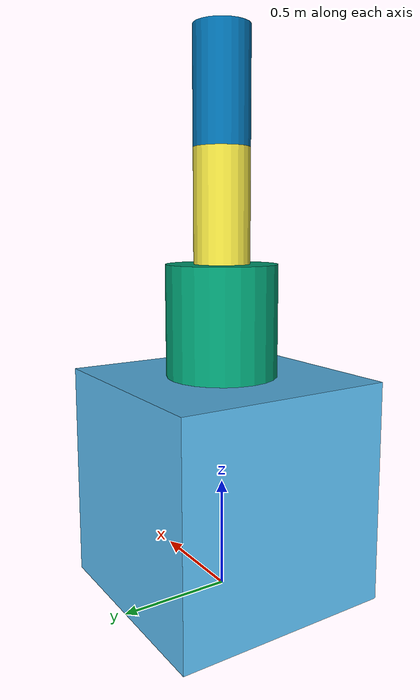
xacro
<?xml version="1.0"?>
<robot name="manipulator" xmlns:xacro="http://www.ros.org/wiki/xacro">

    <gazebo>
        <plugin filename="libgazebo_ros2_control.so" name="gazebo_ros2_control" >
            <robot_param>robot_description</robot_param>
            <robot_param_node>robot_state_publisher</robot_param_node>
            <parameters>$(find manipulator_bringups)/config/controller.yaml</parameters>
        </plugin>

    </gazebo>

    <ros2_control name="RobotSystem" type="system">
        <hardware>
            <plugin>gazebo_ros2_control/GazeboSystem</plugin>
        </hardware>

        <joint name="base_1_joint">
            <command_interface name="position">
                <param name="${-pi/2}"/>
                <param name="${pi/2}" />
            </command_interface>

            <state_interface name="position"></state_interface>
        </joint>

        <joint name="1_2_joint">
            <command_interface name="position">
                <param name="${-pi/2}"/>
                <param name="${pi/2}" />
            </command_interface>

            <state_interface name="position"></state_interface>
        </joint>

        <joint name="2_3_joint">
            <command_interface name="position">
                <param name="${-pi/2}"/>
                <param name="${pi/2}" />
            </command_interface>

            <state_interface name="position"></state_interface>
        </joint>

    </ros2_control>

    <xacro:property name="box_length" value="1.0" />
    <xacro:property name="cylinder_radius" value="0.25" />
    <xacro:property name="cylinder_height" value="0.5" />

    <xacro:macro name="cylinder_inertia" params="m r h xyz rpy">
        <inertial>
            <origin xyz="${xyz}" rpy="${rpy}" />
            <mass value="${m}" />
            <inertia ixx="${m*((3*r*r) +(h*h))/12}" ixy="0" ixz="0"
                     iyy="${m*((3*r*r) +(h*h))/12}" iyz="0"
                     izz="${m*r*r/2}" />
        </inertial>
    </xacro:macro>

    <xacro:macro name="default_transmission" params="name" >
        <transmission name="t_${name}">
            <plugin>transmission_interface/SimpleTransmission</plugin>
            <actuator name="m_${name}" role="actuator1"/>
            <joint name="${name}" role="joint1">
                <mechanical_reduction>1.0</mechanical_reduction>
            </joint>
        </transmission>
    </xacro:macro>

    <link name="foot" />

    <joint name="dummy" type="fixed">
        <parent link="foot" />
        <child link="base_link" />
    </joint>

    <link name="base_link">
        <visual>
            <geometry>
                <box size="${box_length} ${box_length} ${box_length}" />
            </geometry>
            <origin xyz="0 0 ${box_length/2}" rpy="0 0 0" />
        </visual>
        <inertial>
            <origin xyz="0 0 ${box_length/2}" rpy="0 0 0" />
            <mass value="5" />
            <inertia ixx="${box_length*box_length*5/6}" ixy="0" ixz="0"
                     iyy="${box_length*box_length*5/6}" iyz="0"
                     izz="${box_length*box_length*5/6}" />
        </inertial>
        <collision>
            <geometry>
                <box size="${box_length} ${box_length} ${box_length}" />
            </geometry>
            <origin xyz="0 0 ${box_length/2}" rpy="0 0 0" />
        </collision>

    </link>

    <joint name="base_1_joint" type="revolute">
        <parent link="base_link"/>
        <child link="1_link"/>
        <origin xyz="0 0 ${box_length}" rpy="0 0 0"/>
        <axis xyz="0 0 1" />
        <limit lower="${-pi/2}" upper="${pi/2}" effort="100" velocity="100" />

    </joint>

    <link name="1_link">
        <visual>
            <geometry>
                <cylinder radius="${cylinder_radius}" length="${cylinder_height}" />
            </geometry>
            <origin xyz="0 0 ${cylinder_height/2}" rpy="0 0 0" />
        </visual>
        <xacro:cylinder_inertia m="2" r="${cylinder_radius}" h="${cylinder_height}" xyz="0 0 ${cylinder_height/2}" rpy="0 0 0" />
        <collision>
            <geometry>
                <cylinder radius="${cylinder_radius}" length="${cylinder_height}" />
            </geometry>
            <origin xyz="0 0 ${cylinder_height/2}" rpy="0 0 0" />
        </collision>

    </link>

    <joint name="1_2_joint" type="revolute">
        <parent link="1_link"/>
        <child link="2_link"/>
        <origin xyz="0 0 ${cylinder_height}" rpy="0 0 0"/>
        <axis xyz="1 0 0" />
        <limit lower="${-pi/2}" upper="${pi/2}" effort="100" velocity="100" />

    </joint>

    <link name="2_link">
        <visual>
            <geometry>
                <cylinder radius="${cylinder_radius/2}" length="${cylinder_height}" />
            </geometry>
            <origin xyz="0 0 ${cylinder_height/2} " rpy="0 0 0" />
        </visual>
        <xacro:cylinder_inertia m="0.5" r="${cylinder_radius/2}" h="${cylinder_height}" xyz="0 0 ${cylinder_height/2}" rpy="0 0 0" />
        <collision>
            <geometry>
                <cylinder radius="${cylinder_radius/2}" length="${cylinder_height}" />
            </geometry>
            <origin xyz="0 0 ${cylinder_height/2} " rpy="0 0 0" />
        </collision>

    </link>

    <joint name="2_3_joint" type="revolute">
        <parent link="2_link"/>
        <child link="3_link"/>
        <origin xyz="0 0 ${cylinder_height}" rpy="0 0 0"/>
        <axis xyz="1 0 0" />
        <limit lower="${-pi/2}" upper="${pi/2}" effort="100" velocity="100" />

    </joint>

    <link name="3_link">
        <visual>
            <geometry>
                <cylinder radius="${cylinder_radius/2}" length="${cylinder_height}" />
            </geometry>
            <origin xyz="0 0 ${cylinder_height/2} " rpy="0 0 0" />
        </visual>
        <xacro:cylinder_inertia m="0.5" r="${cylinder_radius/2}" h="${cylinder_height}" xyz="0 0 ${cylinder_height/2}" rpy="0 0 0" />
        <collision>
            <geometry>
                <cylinder radius="${cylinder_radius/2}" length="${cylinder_height}" />
            </geometry>
            <origin xyz="0 0 ${cylinder_height/2} " rpy="0 0 0" />
        </collision>

    </link>

    <xacro:default_transmission name="base_1_joint" />
    <xacro:default_transmission name="1_2_joint" />
    <xacro:default_transmission name="2_3_joint" />
</robot>
